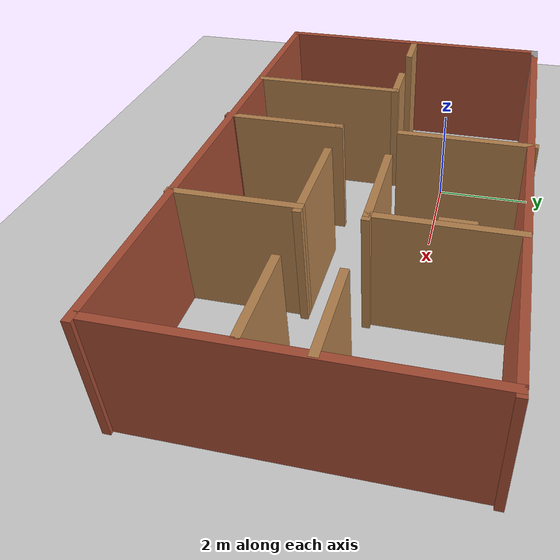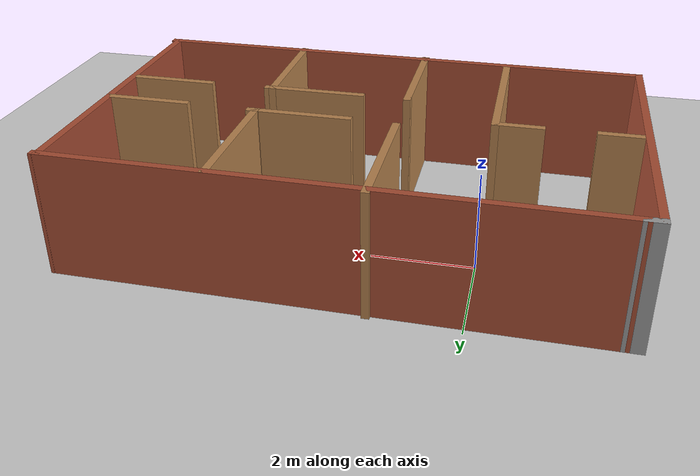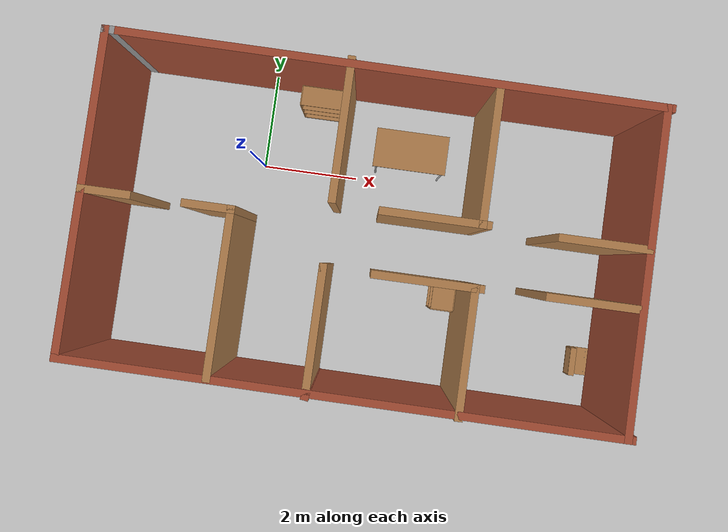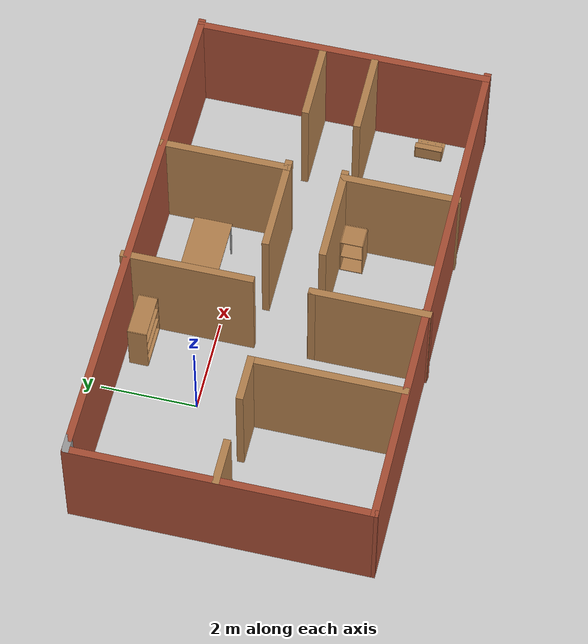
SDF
<sdf version="1.7">
 <world name="default">
  <light name="sun" type="directional">
   <pose>0 0 10 0 -0 0</pose>
   <diffuse>0.8 0.8 0.8 1</diffuse>
   <specular>0.2 0.2 0.2 1</specular>
   <attenuation>
    <range>1000</range>
    <constant>0.9</constant>
    <linear>0.01</linear>
    <quadratic>0.001</quadratic>
   </attenuation>
   <direction>-0.5 0.1 -0.9</direction>
   <spot><inner_angle>0</inner_angle><outer_angle>0</outer_angle><falloff>0</falloff></spot>
  </light>
  <model name="ground_plane">
   <static>1</static>
   <link name="link">
    <collision name="collision">
     <geometry><plane><normal>0 0 1</normal><size>100 100</size></plane></geometry>
     <surface>
      <contact><collide_bitmask>65535</collide_bitmask></contact>
      <friction><ode><mu>100</mu><mu2>50</mu2></ode></friction>
     </surface>
    </collision>
    <visual name="visual">
     <cast_shadows>0</cast_shadows>
     <geometry><plane><normal>0 0 1</normal><size>100 100</size></plane></geometry>
     <material>
      <script><uri>file://media/materials/scripts/gazebo.material</uri><name>Gazebo/Grey</name></script>
     </material>
    </visual>
   </link>
  </model>
  <gravity>0 0 -9.8</gravity>
  <magnetic_field>6e-06 2.3e-05 -4.2e-05</magnetic_field>
  <atmosphere type="adiabatic"/>
  <physics type="ode">
   <max_step_size>0.001</max_step_size>
   <real_time_factor>1</real_time_factor>
   <real_time_update_rate>1000</real_time_update_rate>
  </physics>
  <scene><ambient>0.4 0.4 0.4 1</ambient><background>0.7 0.7 0.7 1</background><shadows>1</shadows></scene>
  <spherical_coordinates>
   <surface_model>EARTH_WGS84</surface_model>
   <latitude_deg>0</latitude_deg>
   <longitude_deg>0</longitude_deg>
   <elevation>0</elevation>
   <heading_deg>0</heading_deg>
  </spherical_coordinates>
  <model name="house11">
   <pose>2.38309 -0.70379 0 0 -0 0</pose>
   <link name="Wall_0">
    <collision name="Wall_0_Collision">
     <geometry><box><size>10.4641 0.15 2.5</size></box></geometry>
     <pose>0 0 1.25 0 -0 0</pose>
    </collision>
    <visual name="Wall_0_Visual">
     <pose>0 0 1.25 0 -0 0</pose>
     <geometry><box><size>10.4641 0.15 2.5</size></box></geometry>
     <material>
      <script><uri>file://media/materials/scripts/gazebo.material</uri><name>Gazebo/Bricks</name></script>
      <ambient>1 1 1 1</ambient>
     </material>
     <meta><layer>0</layer></meta>
    </visual>
    <pose>0.124996 2.50218 0 0 -0 -0.00446</pose>
   </link>
   <link name="Wall_11">
    <collision name="Wall_11_Collision">
     <geometry><box><size>1 0.15 2.5</size></box></geometry>
     <pose>0 0 1.25 0 -0 0</pose>
    </collision>
    <visual name="Wall_11_Visual">
     <pose>0 0 1.25 0 -0 0</pose>
     <geometry><box><size>1 0.15 2.5</size></box></geometry>
     <material>
      <script><uri>file://media/materials/scripts/gazebo.material</uri><name>Gazebo/Wood</name></script>
      <ambient>1 1 1 1</ambient>
     </material>
     <meta><layer>0</layer></meta>
    </visual>
    <pose>-4.856 -0.460823 0 0 -0 3.14159</pose>
   </link>
   <link name="Wall_14">
    <collision name="Wall_14_Collision">
     <geometry><box><size>1.75 0.15 2.5</size></box></geometry>
     <pose>0 0 1.25 0 -0 0</pose>
    </collision>
    <visual name="Wall_14_Visual">
     <pose>0 0 1.25 0 -0 0</pose>
     <geometry><box><size>1.75 0.15 2.5</size></box></geometry>
     <material>
      <script><uri>file://media/materials/scripts/gazebo.material</uri><name>Gazebo/Wood</name></script>
      <ambient>1 1 1 1</ambient>
     </material>
     <meta><layer>0</layer></meta>
    </visual>
    <pose>4.383 -0.161823 0 0 -0 3.14159</pose>
   </link>
   <link name="Wall_16">
    <collision name="Wall_16_Collision">
     <geometry><box><size>1.75 0.15 2.5</size></box></geometry>
     <pose>0 0 1.25 0 -0 0</pose>
    </collision>
    <visual name="Wall_16_Visual">
     <pose>0 0 1.25 0 -0 0</pose>
     <geometry><box><size>1.75 0.15 2.5</size></box></geometry>
     <material>
      <script><uri>file://media/materials/scripts/gazebo.material</uri><name>Gazebo/Wood</name></script>
      <ambient>1 1 1 1</ambient>
     </material>
     <meta><layer>0</layer></meta>
    </visual>
    <pose>4.291 -1.26582 0 0 -0 3.14159</pose>
   </link>
   <link name="Wall_18">
    <collision name="Wall_18_Collision">
     <geometry><box><size>0.16 0.15 2.5</size></box></geometry>
     <pose>0 0 1.25 0 -0 0</pose>
    </collision>
    <visual name="Wall_18_Visual">
     <pose>0 0 1.25 0 -0 0</pose>
     <geometry><box><size>0.16 0.15 2.5</size></box></geometry>
     <material>
      <script><uri>file://media/materials/scripts/gazebo.material</uri><name>Gazebo/Wood</name></script>
      <ambient>1 1 1 1</ambient>
     </material>
     <meta><layer>0</layer></meta>
    </visual>
    <pose>2.106 -0.115823 0 0 -0 0</pose>
   </link>
   <link name="Wall_19">
    <collision name="Wall_19_Collision">
     <geometry><box><size>2.75 0.15 2.5</size></box></geometry>
     <pose>0 0 1.25 0 -0 0</pose>
    </collision>
    <visual name="Wall_19_Visual">
     <pose>0 0 1.25 0 -0 0</pose>
     <geometry><box><size>2.75 0.15 2.5</size></box></geometry>
     <material>
      <script><uri>file://media/materials/scripts/gazebo.material</uri><name>Gazebo/Wood</name></script>
      <ambient>1 1 1 1</ambient>
     </material>
     <meta><layer>0</layer></meta>
    </visual>
    <pose>2.111 1.18418 0 0 -0 1.5708</pose>
   </link>
   <link name="Wall_21">
    <collision name="Wall_21_Collision">
     <geometry><box><size>0.25 0.15 2.5</size></box></geometry>
     <pose>0 0 1.25 0 -0 0</pose>
    </collision>
    <visual name="Wall_21_Visual">
     <pose>0 0 1.25 0 -0 0</pose>
     <geometry><box><size>0.25 0.15 2.5</size></box></geometry>
     <material>
      <script><uri>file://media/materials/scripts/gazebo.material</uri><name>Gazebo/Wood</name></script>
      <ambient>1 1 1 1</ambient>
     </material>
     <meta><layer>0</layer></meta>
    </visual>
    <pose>2.161 -0.115823 0 0 -0 0</pose>
   </link>
   <link name="Wall_23">
    <collision name="Wall_23_Collision">
     <geometry><box><size>2.5 0.15 2.5</size></box></geometry>
     <pose>0 0 1.25 0 -0 0</pose>
    </collision>
    <visual name="Wall_23_Visual">
     <pose>0 0 1.25 0 -0 0</pose>
     <geometry><box><size>2.5 0.15 2.5</size></box></geometry>
     <material>
      <script><uri>file://media/materials/scripts/gazebo.material</uri><name>Gazebo/Wood</name></script>
      <ambient>1 1 1 1</ambient>
     </material>
     <meta><layer>0</layer></meta>
    </visual>
    <pose>2.124 -2.46382 0 0 -0 -1.5708</pose>
   </link>
   <link name="Wall_25">
    <collision name="Wall_25_Collision">
     <geometry><box><size>0.25 0.15 2.5</size></box></geometry>
     <pose>0 0 1.25 0 -0 0</pose>
    </collision>
    <visual name="Wall_25_Visual">
     <pose>0 0 1.25 0 -0 0</pose>
     <geometry><box><size>0.25 0.15 2.5</size></box></geometry>
     <material>
      <script><uri>file://media/materials/scripts/gazebo.material</uri><name>Gazebo/Wood</name></script>
      <ambient>1 1 1 1</ambient>
     </material>
     <meta><layer>0</layer></meta>
    </visual>
    <pose>2.174 -1.28882 0 0 -0 0</pose>
   </link>
   <link name="Wall_27">
    <collision name="Wall_27_Collision">
     <geometry><box><size>2 0.15 2.5</size></box></geometry>
     <pose>0 0 1.25 0 -0 0</pose>
    </collision>
    <visual name="Wall_27_Visual">
     <pose>0 0 1.25 0 -0 0</pose>
     <geometry><box><size>2 0.15 2.5</size></box></geometry>
     <material>
      <script><uri>file://media/materials/scripts/gazebo.material</uri><name>Gazebo/Wood</name></script>
      <ambient>1 1 1 1</ambient>
     </material>
     <meta><layer>0</layer></meta>
    </visual>
    <pose>1.199 -1.28882 0 0 -0 3.14159</pose>
   </link>
   <link name="Wall_29">
    <collision name="Wall_29_Collision">
     <geometry><box><size>2.5 0.15 2.5</size></box></geometry>
     <pose>0 0 1.25 0 -0 0</pose>
    </collision>
    <visual name="Wall_29_Visual">
     <pose>0 0 1.25 0 -0 0</pose>
     <geometry><box><size>2.5 0.15 2.5</size></box></geometry>
     <material>
      <script><uri>file://media/materials/scripts/gazebo.material</uri><name>Gazebo/Wood</name></script>
      <ambient>1 1 1 1</ambient>
     </material>
     <meta><layer>0</layer></meta>
    </visual>
    <pose>-0.682004 -2.46036 0 0 -0 -1.5708</pose>
   </link>
   <link name="Wall_3">
    <collision name="Wall_3_Collision">
     <geometry><box><size>6.25 0.15 2.5</size></box></geometry>
     <pose>0 0 1.25 0 -0 0</pose>
    </collision>
    <visual name="Wall_3_Visual">
     <pose>0 0 1.25 0 -0 0</pose>
     <geometry><box><size>6.25 0.15 2.5</size></box></geometry>
     <material>
      <script><uri>file://media/materials/scripts/gazebo.material</uri><name>Gazebo/Bricks</name></script>
      <ambient>1 1 1 1</ambient>
     </material>
     <meta><layer>0</layer></meta>
    </visual>
    <pose>5.213 -0.570823 0 0 -0 -1.5708</pose>
   </link>
   <link name="Wall_30">
    <collision name="Wall_30_Collision">
     <geometry><box><size>0.221278 0.15 2.5</size></box></geometry>
     <pose>0 0 1.25 0 -0 0</pose>
    </collision>
    <visual name="Wall_30_Visual">
     <pose>0 0 1.25 0 -0 0</pose>
     <geometry><box><size>0.221278 0.15 2.5</size></box></geometry>
     <material>
      <script><uri>file://media/materials/scripts/gazebo.material</uri><name>Gazebo/Bricks</name></script>
      <ambient>1 1 1 1</ambient>
     </material>
     <meta><layer>0</layer></meta>
    </visual>
    <pose>-0.677004 -3.60511 0 0 -0 1.43004</pose>
   </link>
   <link name="Wall_33">
    <collision name="Wall_33_Collision">
     <geometry><box><size>0.15 0.15 2.5</size></box></geometry>
     <pose>0 0 1.25 0 -0 0</pose>
    </collision>
    <visual name="Wall_33_Visual">
     <pose>0 0 1.25 0 -0 0</pose>
     <geometry><box><size>0.15 0.15 2.5</size></box></geometry>
     <material>
      <script><uri>file://media/materials/scripts/gazebo.material</uri><name>Gazebo/Wood</name></script>
      <ambient>1 1 1 1</ambient>
     </material>
     <meta><layer>0</layer></meta>
    </visual>
    <pose>-0.682004 -1.2904 0 0 -0 0</pose>
   </link>
   <link name="Wall_35">
    <collision name="Wall_35_Collision">
     <geometry><box><size>2 0.15 2.5</size></box></geometry>
     <pose>0 0 1.25 0 -0 0</pose>
    </collision>
    <visual name="Wall_35_Visual">
     <pose>0 0 1.25 0 -0 0</pose>
     <geometry><box><size>2 0.15 2.5</size></box></geometry>
     <material>
      <script><uri>file://media/materials/scripts/gazebo.material</uri><name>Gazebo/Wood</name></script>
      <ambient>1 1 1 1</ambient>
     </material>
     <meta><layer>0</layer></meta>
    </visual>
    <pose>1.186 -0.115823 0 0 -0 3.14159</pose>
   </link>
   <link name="Wall_37">
    <collision name="Wall_37_Collision">
     <geometry><box><size>2.75 0.15 2.5</size></box></geometry>
     <pose>0 0 1.25 0 -0 0</pose>
    </collision>
    <visual name="Wall_37_Visual">
     <pose>0 0 1.25 0 -0 0</pose>
     <geometry><box><size>2.75 0.15 2.5</size></box></geometry>
     <material>
      <script><uri>file://media/materials/scripts/gazebo.material</uri><name>Gazebo/Wood</name></script>
      <ambient>1 1 1 1</ambient>
     </material>
     <meta><layer>0</layer></meta>
    </visual>
    <pose>-0.686103 1.27597 0 0 -0 1.5708</pose>
   </link>
   <link name="Wall_4">
    <collision name="Wall_4_Collision">
     <geometry><box><size>10.7141 0.15 2.5</size></box></geometry>
     <pose>0 0 1.25 0 -0 0</pose>
    </collision>
    <visual name="Wall_4_Visual">
     <pose>0 0 1.25 0 -0 0</pose>
     <geometry><box><size>10.7141 0.15 2.5</size></box></geometry>
     <material>
      <script><uri>file://media/materials/scripts/gazebo.material</uri><name>Gazebo/Bricks</name></script>
      <ambient>1 1 1 1</ambient>
     </material>
     <meta><layer>0</layer></meta>
    </visual>
    <pose>-4e-06 -3.59782 0 0 -0 3.13724</pose>
   </link>
   <link name="Wall_5">
    <collision name="Wall_5_Collision">
     <geometry><box><size>6.25 0.15 2.5</size></box></geometry>
     <pose>0 0 1.25 0 -0 0</pose>
    </collision>
    <visual name="Wall_5_Visual">
     <pose>0 0 1.25 0 -0 0</pose>
     <geometry><box><size>6.25 0.15 2.5</size></box></geometry>
     <material>
      <script><uri>file://media/materials/scripts/gazebo.material</uri><name>Gazebo/Bricks</name></script>
      <ambient>1 1 1 1</ambient>
     </material>
     <meta><layer>0</layer></meta>
    </visual>
    <pose>-5.282 -0.524823 0 0 -0 1.5708</pose>
   </link>
   <link name="Wall_6">
    <collision name="Wall_6_Collision">
     <geometry><box><size>0.4 0.15 2.5</size></box></geometry>
     <pose>0 0 1.25 0 -0 0</pose>
    </collision>
    <visual name="Wall_6_Visual">
     <pose>0 0 1.25 0 -0 0</pose>
     <geometry><box><size>0.4 0.15 2.5</size></box></geometry>
     <material>
      <script><uri>file://media/materials/scripts/gazebo.material</uri><name>Gazebo/Grey</name></script>
      <ambient>1 1 1 1</ambient>
     </material>
     <meta><layer>0</layer></meta>
    </visual>
    <pose>-5.157 2.52518 0 0 -0 0</pose>
   </link>
   <link name="Wall_8">
    <collision name="Wall_8_Collision">
     <geometry><box><size>3.25 0.15 2.5</size></box></geometry>
     <pose>0 0 1.25 0 -0 0</pose>
    </collision>
    <visual name="Wall_8_Visual">
     <pose>0 0 1.25 0 -0 0</pose>
     <geometry><box><size>3.25 0.15 2.5</size></box></geometry>
     <material>
      <script><uri>file://media/materials/scripts/gazebo.material</uri><name>Gazebo/Wood</name></script>
      <ambient>1 1 1 1</ambient>
     </material>
     <meta><layer>0</layer></meta>
    </visual>
    <pose>-2.499 -2.01582 0 0 -0 1.5708</pose>
   </link>
   <link name="Wall_9">
    <collision name="Wall_9_Collision">
     <geometry><box><size>1 0.15 2.5</size></box></geometry>
     <pose>0 0 1.25 0 -0 0</pose>
    </collision>
    <visual name="Wall_9_Visual">
     <pose>0 0 1.25 0 -0 0</pose>
     <geometry><box><size>1 0.15 2.5</size></box></geometry>
     <material>
      <script><uri>file://media/materials/scripts/gazebo.material</uri><name>Gazebo/Wood</name></script>
      <ambient>1 1 1 1</ambient>
     </material>
     <meta><layer>0</layer></meta>
    </visual>
    <pose>-2.924 -0.465823 0 0 -0 3.14159</pose>
   </link>
   <static>1</static>
  </model>
  <model name="cabinet">
   <static>1</static>
   <link name="cabinet_bottom_plate">
    <inertial>
     <pose>0 0 -1 0 -0 0</pose>
     <inertia><ixx>2.05</ixx><ixy>0</ixy><ixz>0</ixz><iyy>2.05</iyy><iyz>0</iyz><izz>2.05</izz></inertia>
     <mass>25</mass>
    </inertial>
    <collision name="cabinet_bottom_plate_geom">
     <pose>0 0 0.01 0 -0 0</pose>
     <geometry><box><size>0.45 0.45 0.02</size></box></geometry>
    </collision>
    <visual name="cabinet_bottom_plate_geom_visual">
     <pose>0 0 0.01 0 -0 0</pose>
     <geometry><box><size>0.45 0.45 0.02</size></box></geometry>
     <material>
      <script><uri>file://media/materials/scripts/gazebo.material</uri><name>Gazebo/Wood</name></script>
     </material>
    </visual>
    <collision name="cabinet_bottom_plate_geom_cabinet_back_plate">
     <pose>0.235 0 0.51 0 -0 0</pose>
     <geometry><box><size>0.02 0.45 1.02</size></box></geometry>
    </collision>
    <visual name="cabinet_bottom_plate_geom_cabinet_back_plate_visual">
     <pose>0.235 0 0.51 0 -0 0</pose>
     <geometry><box><size>0.02 0.45 1.02</size></box></geometry>
     <material>
      <script><uri>file://media/materials/scripts/gazebo.material</uri><name>Gazebo/Wood</name></script>
     </material>
    </visual>
    <collision name="cabinet_bottom_plate_geom_cabinet_left_plate">
     <pose>0 0.235 0.51 0 -0 0</pose>
     <geometry><box><size>0.45 0.02 1.02</size></box></geometry>
    </collision>
    <visual name="cabinet_bottom_plate_geom_cabinet_left_plate_visual">
     <pose>0 0.235 0.51 0 -0 0</pose>
     <geometry><box><size>0.45 0.02 1.02</size></box></geometry>
     <material>
      <script><uri>file://media/materials/scripts/gazebo.material</uri><name>Gazebo/Wood</name></script>
     </material>
    </visual>
    <collision name="cabinet_bottom_plate_geom_cabinet_middle_plate">
     <pose>0 0 0.51 0 -0 0</pose>
     <geometry><box><size>0.45 0.45 0.02</size></box></geometry>
    </collision>
    <visual name="cabinet_bottom_plate_geom_cabinet_middle_plate_visual">
     <pose>0 0 0.51 0 -0 0</pose>
     <geometry><box><size>0.45 0.45 0.02</size></box></geometry>
     <material>
      <script><uri>file://media/materials/scripts/gazebo.material</uri><name>Gazebo/Wood</name></script>
     </material>
    </visual>
    <collision name="cabinet_bottom_plate_geom_cabinet_right_plate">
     <pose>0 -0.235 0.51 0 -0 0</pose>
     <geometry><box><size>0.45 0.02 1.02</size></box></geometry>
    </collision>
    <visual name="cabinet_bottom_plate_geom_cabinet_right_plate_visual">
     <pose>0 -0.235 0.51 0 -0 0</pose>
     <geometry><box><size>0.45 0.02 1.02</size></box></geometry>
     <material>
      <script><uri>file://media/materials/scripts/gazebo.material</uri><name>Gazebo/Wood</name></script>
     </material>
    </visual>
    <collision name="cabinet_bottom_plate_geom_cabinet_top_plate">
     <pose>0 0 1.01 0 -0 0</pose>
     <geometry><box><size>0.45 0.45 0.02</size></box></geometry>
    </collision>
    <visual name="cabinet_bottom_plate_geom_cabinet_top_plate_visual">
     <pose>0 0 1.01 0 -0 0</pose>
     <geometry><box><size>0.45 0.45 0.02</size></box></geometry>
     <material>
      <script><uri>file://media/materials/scripts/gazebo.material</uri><name>Gazebo/Wood</name></script>
     </material>
    </visual>
   </link>
   <pose>4.12138 -2.31899 0 0 -0 0</pose>
  </model>
  <model name="bookshelf">
   <static>1</static>
   <link name="link">
    <inertial><mass>1</mass></inertial>
    <collision name="back">
     <pose>0 0.005 0.6 0 -0 0</pose>
     <geometry><box><size>0.9 0.01 1.2</size></box></geometry>
    </collision>
    <visual name="visual1">
     <pose>0 0.005 0.6 0 -0 0</pose>
     <geometry><box><size>0.9 0.01 1.2</size></box></geometry>
     <material>
      <script><uri>file://media/materials/scripts/gazebo.material</uri><name>Gazebo/Wood</name></script>
     </material>
    </visual>
    <collision name="left_side">
     <pose>0.45 -0.195 0.6 0 -0 0</pose>
     <geometry><box><size>0.02 0.4 1.2</size></box></geometry>
    </collision>
    <visual name="visual2">
     <pose>0.45 -0.195 0.6 0 -0 0</pose>
     <geometry><box><size>0.02 0.4 1.2</size></box></geometry>
     <material>
      <script><uri>file://media/materials/scripts/gazebo.material</uri><name>Gazebo/Wood</name></script>
     </material>
    </visual>
    <collision name="right_side">
     <pose>-0.45 -0.195 0.6 0 -0 0</pose>
     <geometry><box><size>0.02 0.4 1.2</size></box></geometry>
    </collision>
    <visual name="visual3">
     <pose>-0.45 -0.195 0.6 0 -0 0</pose>
     <geometry><box><size>0.02 0.4 1.2</size></box></geometry>
     <material>
      <script><uri>file://media/materials/scripts/gazebo.material</uri><name>Gazebo/Wood</name></script>
     </material>
    </visual>
    <collision name="bottom">
     <pose>0 -0.195 0.03 0 -0 0</pose>
     <geometry><box><size>0.88 0.4 0.06</size></box></geometry>
    </collision>
    <visual name="visual4">
     <pose>0 -0.195 0.03 0 -0 0</pose>
     <geometry><box><size>0.88 0.4 0.06</size></box></geometry>
     <material>
      <script><uri>file://media/materials/scripts/gazebo.material</uri><name>Gazebo/Wood</name></script>
     </material>
    </visual>
    <collision name="top">
     <pose>0 -0.195 1.19 0 -0 0</pose>
     <geometry><box><size>0.88 0.4 0.02</size></box></geometry>
    </collision>
    <visual name="visual5">
     <pose>0 -0.195 1.19 0 -0 0</pose>
     <geometry><box><size>0.88 0.4 0.02</size></box></geometry>
     <material>
      <script><uri>file://media/materials/scripts/gazebo.material</uri><name>Gazebo/Wood</name></script>
     </material>
    </visual>
    <collision name="low_shelf">
     <pose>0 -0.195 0.43 0 -0 0</pose>
     <geometry><box><size>0.88 0.4 0.02</size></box></geometry>
    </collision>
    <visual name="visual6">
     <pose>0 -0.195 0.43 0 -0 0</pose>
     <geometry><box><size>0.88 0.4 0.02</size></box></geometry>
     <material>
      <script><uri>file://media/materials/scripts/gazebo.material</uri><name>Gazebo/Wood</name></script>
     </material>
    </visual>
    <collision name="high_shelf">
     <pose>0 -0.195 0.8 0 -0 0</pose>
     <geometry><box><size>0.88 0.4 0.02</size></box></geometry>
    </collision>
    <visual name="visual7">
     <pose>0 -0.195 0.8 0 -0 0</pose>
     <geometry><box><size>0.88 0.4 0.02</size></box></geometry>
     <material>
      <script><uri>file://media/materials/scripts/gazebo.material</uri><name>Gazebo/Wood</name></script>
     </material>
    </visual>
   </link>
   <pose>1.1604 1.59308 0 0 -0 0</pose>
  </model>
  <model name="table">
   <static>1</static>
   <link name="link">
    <collision name="surface">
     <pose>0 0 1 0 -0 0</pose>
     <geometry><box><size>1.5 0.8 0.03</size></box></geometry>
     <surface><friction><ode><mu>0.6</mu><mu2>0.6</mu2></ode></friction></surface>
    </collision>
    <visual name="visual1">
     <pose>0 0 1 0 -0 0</pose>
     <geometry><box><size>1.5 0.8 0.03</size></box></geometry>
     <material>
      <script><uri>file://media/materials/scripts/gazebo.material</uri><name>Gazebo/Wood</name></script>
     </material>
    </visual>
    <collision name="front_left_leg">
     <pose>0.68 0.38 0.5 0 -0 0</pose>
     <geometry><cylinder><radius>0.02</radius><length>1</length></cylinder></geometry>
    </collision>
    <visual name="front_left_leg">
     <pose>0.68 0.38 0.5 0 -0 0</pose>
     <geometry><cylinder><radius>0.02</radius><length>1</length></cylinder></geometry>
     <material>
      <script><uri>file://media/materials/scripts/gazebo.material</uri><name>Gazebo/Grey</name></script>
     </material>
    </visual>
    <collision name="front_right_leg">
     <pose>0.68 -0.38 0.5 0 -0 0</pose>
     <geometry><cylinder><radius>0.02</radius><length>1</length></cylinder></geometry>
    </collision>
    <visual name="front_right_leg">
     <pose>0.68 -0.38 0.5 0 -0 0</pose>
     <geometry><cylinder><radius>0.02</radius><length>1</length></cylinder></geometry>
     <material>
      <script><uri>file://media/materials/scripts/gazebo.material</uri><name>Gazebo/Grey</name></script>
     </material>
    </visual>
    <collision name="back_right_leg">
     <pose>-0.68 -0.38 0.5 0 -0 0</pose>
     <geometry><cylinder><radius>0.02</radius><length>1</length></cylinder></geometry>
    </collision>
    <visual name="back_right_leg">
     <pose>-0.68 -0.38 0.5 0 -0 0</pose>
     <geometry><cylinder><radius>0.02</radius><length>1</length></cylinder></geometry>
     <material>
      <script><uri>file://media/materials/scripts/gazebo.material</uri><name>Gazebo/Grey</name></script>
     </material>
    </visual>
    <collision name="back_left_leg">
     <pose>-0.68 0.38 0.5 0 -0 0</pose>
     <geometry><cylinder><radius>0.02</radius><length>1</length></cylinder></geometry>
    </collision>
    <visual name="back_left_leg">
     <pose>-0.68 0.38 0.5 0 -0 0</pose>
     <geometry><cylinder><radius>0.02</radius><length>1</length></cylinder></geometry>
     <material>
      <script><uri>file://media/materials/scripts/gazebo.material</uri><name>Gazebo/Grey</name></script>
     </material>
    </visual>
   </link>
   <pose>3.08059 0.588158 0 0 -0 0</pose>
  </model>
  <model name="wooden_case">
   <link name="base">
    <pose>0 0 0.024 0 -0 0</pose>
    <inertial>
     <pose>-0.022184 0 0.171592 0 -0 0</pose>
     <mass>3.96264</mass>
     <inertia>
      <ixx>0.213536</ixx>
      <ixy>0</ixy>
      <ixz>0.000779377</ixz>
      <iyy>0.0708943</iyy>
      <iyz>0</iyz>
      <izz>0.154604</izz>
     </inertia>
    </inertial>
    <collision name="collision_back">
     <pose>-0.053975 0 0.1778 0 -0 0</pose>
     <geometry><box><size>0.01905 0.5461 0.3175</size></box></geometry>
     <surface>
      <contact>
       <poissons_ratio>0.347</poissons_ratio>
       <elastic_modulus>8.8e+09</elastic_modulus>
       <ode><kp>100000</kp><kd>100</kd><max_vel>100</max_vel><min_depth>0.001</min_depth></ode>
      </contact>
      <friction>
       <torsional>
        <coefficient>1</coefficient>
        <use_patch_radius>0</use_patch_radius>
        <surface_radius>0.01</surface_radius>
       </torsional>
      </friction>
     </surface>
    </collision>
    <visual name="visual_back">
     <pose>-0.053975 0 0.1778 0 -0 0</pose>
     <geometry><box><size>0.01905 0.5461 0.3175</size></box></geometry>
     <material>
      <script><uri>file://media/materials/scripts/gazebo.material</uri><name>Gazebo/Wood</name></script>
     </material>
    </visual>
    <collision name="collision_bottom">
     <pose>0 0 0.009525 0 -0 0</pose>
     <geometry><box><size>0.127 0.5842 0.01905</size></box></geometry>
     <surface>
      <contact>
       <poissons_ratio>0.347</poissons_ratio>
       <elastic_modulus>8.8e+09</elastic_modulus>
       <ode><kp>100000</kp><kd>100</kd><max_vel>100</max_vel><min_depth>0.001</min_depth></ode>
      </contact>
      <friction>
       <torsional>
        <coefficient>1</coefficient>
        <use_patch_radius>0</use_patch_radius>
        <surface_radius>0.01</surface_radius>
       </torsional>
      </friction>
     </surface>
    </collision>
    <visual name="visual_bottom">
     <pose>0 0 0.009525 0 -0 0</pose>
     <geometry><box><size>0.127 0.5842 0.01905</size></box></geometry>
     <material>
      <script><uri>file://media/materials/scripts/gazebo.material</uri><name>Gazebo/Wood</name></script>
     </material>
    </visual>
    <collision name="collision_top">
     <pose>0 0 0.346075 0 -0 0</pose>
     <geometry><box><size>0.127 0.5842 0.01905</size></box></geometry>
     <surface>
      <contact>
       <poissons_ratio>0.347</poissons_ratio>
       <elastic_modulus>8.8e+09</elastic_modulus>
       <ode><kp>100000</kp><kd>100</kd><max_vel>100</max_vel><min_depth>0.001</min_depth></ode>
      </contact>
      <friction>
       <torsional>
        <coefficient>1</coefficient>
        <use_patch_radius>0</use_patch_radius>
        <surface_radius>0.01</surface_radius>
       </torsional>
      </friction>
     </surface>
    </collision>
    <visual name="visual_top">
     <pose>0 0 0.346075 0 -0 0</pose>
     <geometry><box><size>0.127 0.5842 0.01905</size></box></geometry>
     <material>
      <script><uri>file://media/materials/scripts/gazebo.material</uri><name>Gazebo/Wood</name></script>
     </material>
    </visual>
    <collision name="collision_left">
     <pose>0 -0.282575 0.1778 0 -0 0</pose>
     <geometry><box><size>0.127 0.01905 0.3175</size></box></geometry>
     <surface>
      <contact>
       <poissons_ratio>0.347</poissons_ratio>
       <elastic_modulus>8.8e+09</elastic_modulus>
       <ode><kp>100000</kp><kd>100</kd><max_vel>100</max_vel><min_depth>0.001</min_depth></ode>
      </contact>
      <friction>
       <torsional>
        <coefficient>1</coefficient>
        <use_patch_radius>0</use_patch_radius>
        <surface_radius>0.01</surface_radius>
       </torsional>
      </friction>
     </surface>
    </collision>
    <visual name="visual_left">
     <pose>0 -0.282575 0.1778 0 -0 0</pose>
     <geometry><box><size>0.127 0.01905 0.3175</size></box></geometry>
     <material>
      <script><uri>file://media/materials/scripts/gazebo.material</uri><name>Gazebo/Wood</name></script>
     </material>
    </visual>
    <collision name="collision_right">
     <pose>0 0.282575 0.1778 0 -0 0</pose>
     <geometry><box><size>0.127 0.01905 0.3175</size></box></geometry>
     <surface>
      <contact>
       <poissons_ratio>0.347</poissons_ratio>
       <elastic_modulus>8.8e+09</elastic_modulus>
       <ode><kp>100000</kp><kd>100</kd><max_vel>100</max_vel><min_depth>0.001</min_depth></ode>
      </contact>
      <friction>
       <torsional>
        <coefficient>1</coefficient>
        <use_patch_radius>0</use_patch_radius>
        <surface_radius>0.01</surface_radius>
       </torsional>
      </friction>
     </surface>
    </collision>
    <visual name="visual_right">
     <pose>0 0.282575 0.1778 0 -0 0</pose>
     <geometry><box><size>0.127 0.01905 0.3175</size></box></geometry>
     <material>
      <script><uri>file://media/materials/scripts/gazebo.material</uri><name>Gazebo/Wood</name></script>
     </material>
    </visual>
    <collision name="collision_block_left">
     <pose>0.0095 -0.2151 -0.012 0 -0 0</pose>
     <geometry><box><size>0.108 0.05 0.024</size></box></geometry>
     <surface>
      <contact>
       <poissons_ratio>0.347</poissons_ratio>
       <elastic_modulus>8.8e+09</elastic_modulus>
       <ode><kp>100000</kp><kd>100</kd><max_vel>100</max_vel><min_depth>0.001</min_depth></ode>
      </contact>
      <friction>
       <torsional>
        <coefficient>1</coefficient>
        <use_patch_radius>0</use_patch_radius>
        <surface_radius>0.01</surface_radius>
       </torsional>
      </friction>
     </surface>
    </collision>
    <visual name="visual_block_left">
     <pose>0.0095 -0.2151 -0.012 0 -0 0</pose>
     <geometry><box><size>0.108 0.05 0.024</size></box></geometry>
     <material>
      <script><uri>file://media/materials/scripts/gazebo.material</uri><name>Gazebo/Wood</name></script>
     </material>
    </visual>
    <collision name="collision_block_right">
     <pose>0.0095 0.2151 -0.012 0 -0 0</pose>
     <geometry><box><size>0.108 0.05 0.024</size></box></geometry>
     <surface>
      <contact>
       <poissons_ratio>0.347</poissons_ratio>
       <elastic_modulus>8.8e+09</elastic_modulus>
       <ode><kp>100000</kp><kd>100</kd><max_vel>100</max_vel><min_depth>0.001</min_depth></ode>
      </contact>
      <friction>
       <torsional>
        <coefficient>1</coefficient>
        <use_patch_radius>0</use_patch_radius>
        <surface_radius>0.01</surface_radius>
       </torsional>
      </friction>
     </surface>
    </collision>
    <visual name="visual_block_right">
     <pose>0.0095 0.2151 -0.012 0 -0 0</pose>
     <geometry><box><size>0.108 0.05 0.024</size></box></geometry>
     <material>
      <script><uri>file://media/materials/scripts/gazebo.material</uri><name>Gazebo/Wood</name></script>
     </material>
    </visual>
   </link>
   <link name="lid">
    <pose>0.243775 0 0.009525 0 -0 0</pose>
    <inertial>
     <mass>1.97874</mass>
     <inertia>
      <ixx>0.0563367</ixx>
      <ixy>0</ixy>
      <ixz>0</ixz>
      <iyy>0.020911</iyy>
      <iyz>0</iyz>
      <izz>0.0771281</izz>
     </inertia>
    </inertial>
    <collision name="collision">
     <geometry><box><size>0.3556 0.5842 0.01905</size></box></geometry>
     <surface>
      <contact>
       <poissons_ratio>0.347</poissons_ratio>
       <elastic_modulus>8.8e+09</elastic_modulus>
       <ode><kp>100000</kp><kd>100</kd><max_vel>100</max_vel><min_depth>0.001</min_depth></ode>
      </contact>
      <friction>
       <torsional>
        <coefficient>1</coefficient>
        <use_patch_radius>0</use_patch_radius>
        <surface_radius>0.01</surface_radius>
       </torsional>
      </friction>
     </surface>
    </collision>
    <visual name="visual">
     <geometry><box><size>0.3556 0.5842 0.01905</size></box></geometry>
     <material>
      <script><uri>file://media/materials/scripts/gazebo.material</uri><name>Gazebo/Wood</name></script>
     </material>
    </visual>
    <visual name="tee_nut_1">
     <pose>0.122 -0.216 0 0 -0 0</pose>
     <geometry><cylinder><radius>0.00635</radius><length>0.0192405</length></cylinder></geometry>
     <material>
      <script><uri>file://media/materials/scripts/gazebo.material</uri><name>Gazebo/Grey</name></script>
     </material>
    </visual>
    <visual name="tee_nut_2">
     <pose>0.122 -0.088 0 0 -0 0</pose>
     <geometry><cylinder><radius>0.00635</radius><length>0.0192405</length></cylinder></geometry>
     <material>
      <script><uri>file://media/materials/scripts/gazebo.material</uri><name>Gazebo/Grey</name></script>
     </material>
    </visual>
    <visual name="tee_nut_3">
     <pose>0.122 0.088 0 0 -0 0</pose>
     <geometry><cylinder><radius>0.00635</radius><length>0.0192405</length></cylinder></geometry>
     <material>
      <script><uri>file://media/materials/scripts/gazebo.material</uri><name>Gazebo/Grey</name></script>
     </material>
    </visual>
    <visual name="tee_nut_4">
     <pose>0.122 0.216 0 0 -0 0</pose>
     <geometry><cylinder><radius>0.00635</radius><length>0.0192405</length></cylinder></geometry>
     <material>
      <script><uri>file://media/materials/scripts/gazebo.material</uri><name>Gazebo/Grey</name></script>
     </material>
    </visual>
   </link>
   <joint name="lid_hinge" type="revolute">
    <pose>-0.1778 0 0.01905 0 -0 0</pose>
    <parent>base</parent>
    <child>lid</child>
    <axis>
     <xyz>0 1 0</xyz>
     <limit><upper>0.523599</upper><lower>-1.5708</lower></limit>
     <dynamics><spring_reference>0</spring_reference><spring_stiffness>0</spring_stiffness></dynamics>
    </axis>
   </joint>
   <pose>7.10033 -3.28791 -0.001057 -0 -0.000417 4.5e-05</pose>
  </model>
 </world>
</sdf>
